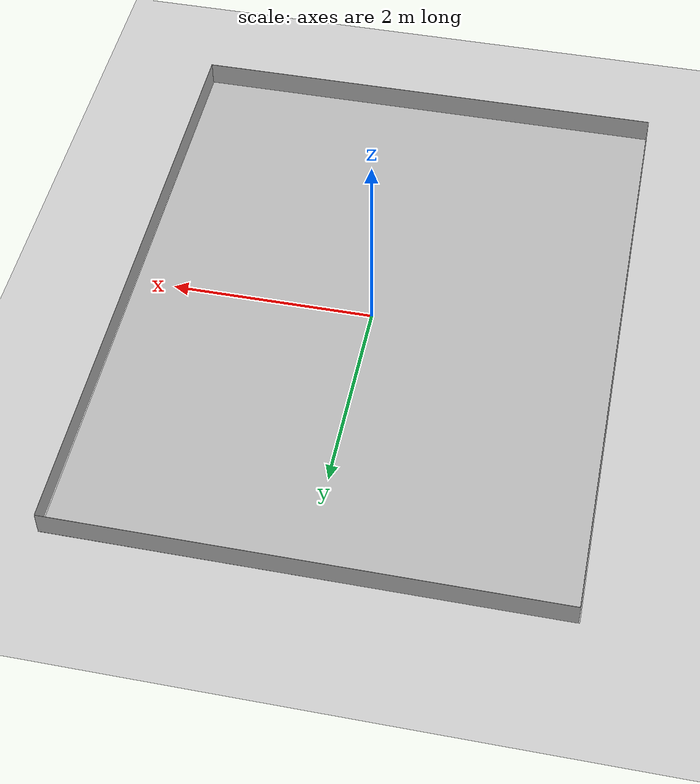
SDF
<sdf version="1.10">
 <world name="empty">
  <physics name="1ms" type="ignored">
   <max_step_size>0.001</max_step_size>
   <real_time_factor>1</real_time_factor>
   <real_time_update_rate>1000</real_time_update_rate>
  </physics>
  <plugin name="gz::sim::systems::Physics" filename="gz-sim-physics-system"/>
  <plugin name="gz::sim::systems::UserCommands" filename="gz-sim-user-commands-system"/>
  <plugin name="gz::sim::systems::SceneBroadcaster" filename="gz-sim-scene-broadcaster-system"/>
  <plugin name="gz::sim::systems::Contact" filename="gz-sim-contact-system"/>
  <gravity>0 0 -9.8000000000000007</gravity>
  <magnetic_field>5.5644999999999998e-06 2.2875799999999999e-05 -4.2388400000000002e-05</magnetic_field>
  <atmosphere type="adiabatic"/>
  <scene>
   <ambient>0.400000006 0.400000006 0.400000006 1</ambient>
   <background>0.699999988 0.699999988 0.699999988 1</background>
   <shadows>true</shadows>
  </scene>
  <model name="ground_plane">
   <static>true</static>
   <link name="link">
    <collision name="collision">
     <geometry><plane><normal>0 0 1</normal><size>100 100</size></plane></geometry>
    </collision>
    <visual name="visual">
     <geometry><plane><normal>0 0 1</normal><size>100 100</size></plane></geometry>
     <material>
      <ambient>0.800000012 0.800000012 0.800000012 1</ambient>
      <diffuse>0.800000012 0.800000012 0.800000012 1</diffuse>
      <specular>0.800000012 0.800000012 0.800000012 1</specular>
     </material>
    </visual>
    <inertial>
     <mass>1</mass>
     <inertia><ixx>1</ixx><ixy>0</ixy><ixz>0</ixz><iyy>1</iyy><iyz>0</iyz><izz>1</izz></inertia>
    </inertial>
   </link>
  </model>
  <model name="qcar_track">
   <link name="link">
    <visual name="visual">
     <geometry><mesh><uri>model://track/meshes/qcar_track.obj</uri></mesh></geometry>
    </visual>
    <collision name="collision">
     <geometry><mesh><uri>model://track/meshes/qcar_track.obj</uri></mesh></geometry>
     <surface>
      <friction>
       <ode><mu>1</mu><mu2>1</mu2><fdir1>0 0 0</fdir1><slip1>0</slip1><slip2>0</slip2></ode>
       <torsional>
        <coefficient>1</coefficient>
        <patch_radius>0</patch_radius>
        <surface_radius>0</surface_radius>
        <use_patch_radius>true</use_patch_radius>
        <ode><slip>0</slip></ode>
       </torsional>
      </friction>
      <bounce><restitution_coefficient>0</restitution_coefficient><threshold>1000000</threshold></bounce>
      <contact>
       <collide_without_contact>false</collide_without_contact>
       <collide_without_contact_bitmask>1</collide_without_contact_bitmask>
       <collide_bitmask>1</collide_bitmask>
       <ode>
        <soft_cfm>0</soft_cfm>
        <soft_erp>0.20000000000000001</soft_erp>
        <kp>10000000000000</kp>
        <kd>1</kd>
        <max_vel>0.01</max_vel>
        <min_depth>0</min_depth>
       </ode>
       <bullet>
        <split_impulse>true</split_impulse>
        <split_impulse_penetration_threshold>-0.01</split_impulse_penetration_threshold>
        <soft_cfm>0</soft_cfm>
        <soft_erp>0.20000000000000001</soft_erp>
        <kp>10000000000000</kp>
        <kd>1</kd>
       </bullet>
      </contact>
     </surface>
    </collision>
    <inertial>
     <mass>1</mass>
     <inertia><ixx>1</ixx><ixy>0</ixy><ixz>0</ixz><iyy>1</iyy><iyz>0</iyz><izz>1</izz></inertia>
    </inertial>
   </link>
   <pose>-0.0097823431914794805 5.0366217391897193e-05 -0.0012175016232881821 2.5557301690900721e-07 -4.292821525489529e-06 0.001021393554416511</pose>
   <static>false</static>
  </model>
  <model name="wood_wall_short">
   <link name="link">
    <visual name="visual">
     <geometry><mesh><uri>model://wall_4_8x0_25/meshes/wood_wall_short.obj</uri></mesh></geometry>
    </visual>
    <collision name="collision">
     <geometry><mesh><uri>model://wall_4_8x0_25/meshes/wood_wall_short.obj</uri></mesh></geometry>
    </collision>
    <inertial>
     <mass>1</mass>
     <inertia><ixx>1</ixx><ixy>0</ixy><ixz>0</ixz><iyy>1</iyy><iyz>0</iyz><izz>1</izz></inertia>
    </inertial>
   </link>
   <pose>0 -3.0500000000000007 0.125 -2.3322400726111823e-19 1.3561861178458716e-19 0.00080000017066670195</pose>
   <static>true</static>
  </model>
  <model name="wood_wall_short_0">
   <link name="link">
    <visual name="visual">
     <geometry><mesh><uri>model://wall_4_8x0_25/meshes/wood_wall_short.obj</uri></mesh></geometry>
    </visual>
    <collision name="collision">
     <geometry><mesh><uri>model://wall_4_8x0_25/meshes/wood_wall_short.obj</uri></mesh></geometry>
    </collision>
    <inertial>
     <mass>1</mass>
     <inertia><ixx>1</ixx><ixy>0</ixy><ixz>0</ixz><iyy>1</iyy><iyz>0</iyz><izz>1</izz></inertia>
    </inertial>
   </link>
   <pose>-1.6263032587282567e-19 3.0499999999999994 0.125 5.4161148555624604e-187 1.4164185662348719e-190 0.0005000000416666737</pose>
   <static>true</static>
  </model>
  <model name="wood_wall_long">
   <link name="link">
    <visual name="visual">
     <geometry><mesh><uri>model://wall_6_1x0_25/meshes/wood_wall_long.obj</uri></mesh></geometry>
    </visual>
    <collision name="collision">
     <geometry><mesh><uri>model://wall_6_1x0_25/meshes/wood_wall_long.obj</uri></mesh></geometry>
    </collision>
    <inertial>
     <mass>1</mass>
     <inertia><ixx>1</ixx><ixy>0</ixy><ixz>0</ixz><iyy>1</iyy><iyz>0</iyz><izz>1</izz></inertia>
    </inertial>
   </link>
   <pose>2.3999999999999999 4.5159191005957621e-20 0.12499999999999997 0 0 1.5707963270000003</pose>
   <static>true</static>
  </model>
  <model name="wood_wall_long_0">
   <link name="link">
    <visual name="visual">
     <geometry><mesh><uri>model://wall_6_1x0_25/meshes/wood_wall_long.obj</uri></mesh></geometry>
    </visual>
    <collision name="collision">
     <geometry><mesh><uri>model://wall_6_1x0_25/meshes/wood_wall_long.obj</uri></mesh></geometry>
    </collision>
    <inertial>
     <mass>1</mass>
     <inertia><ixx>1</ixx><ixy>0</ixy><ixz>0</ixz><iyy>1</iyy><iyz>0</iyz><izz>1</izz></inertia>
    </inertial>
   </link>
   <pose>-2.3999999999999999 2.631905855905634e-19 0.12500000000000003 0 0 1.5707963270000003</pose>
   <static>true</static>
  </model>
  <light name="sun" type="directional">
   <pose>0 0 10 0 0 0</pose>
   <intensity>1</intensity>
   <direction>-0.5 0.10000000000000001 -0.90000000000000002</direction>
   <diffuse>0.800000012 0.800000012 0.800000012 1</diffuse>
   <specular>0.200000003 0.200000003 0.200000003 1</specular>
   <attenuation>
    <range>1000</range>
    <linear>0.0099999997764825821</linear>
    <constant>0.89999997615814209</constant>
    <quadratic>0.0010000000474974513</quadratic>
   </attenuation>
   <spot><inner_angle>0</inner_angle><outer_angle>0</outer_angle><falloff>0</falloff></spot>
  </light>
 </world>
</sdf>
